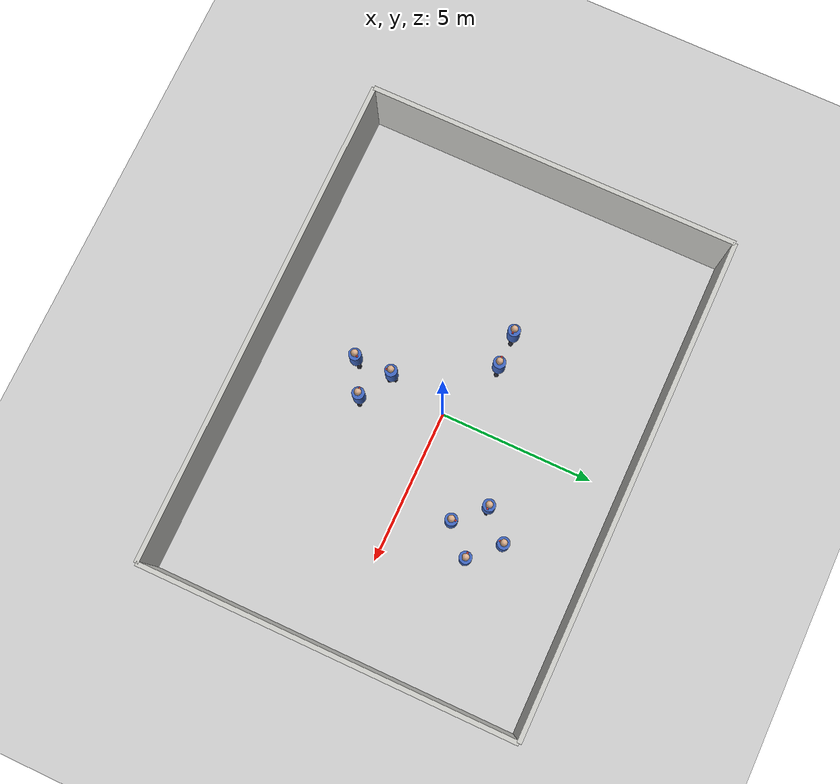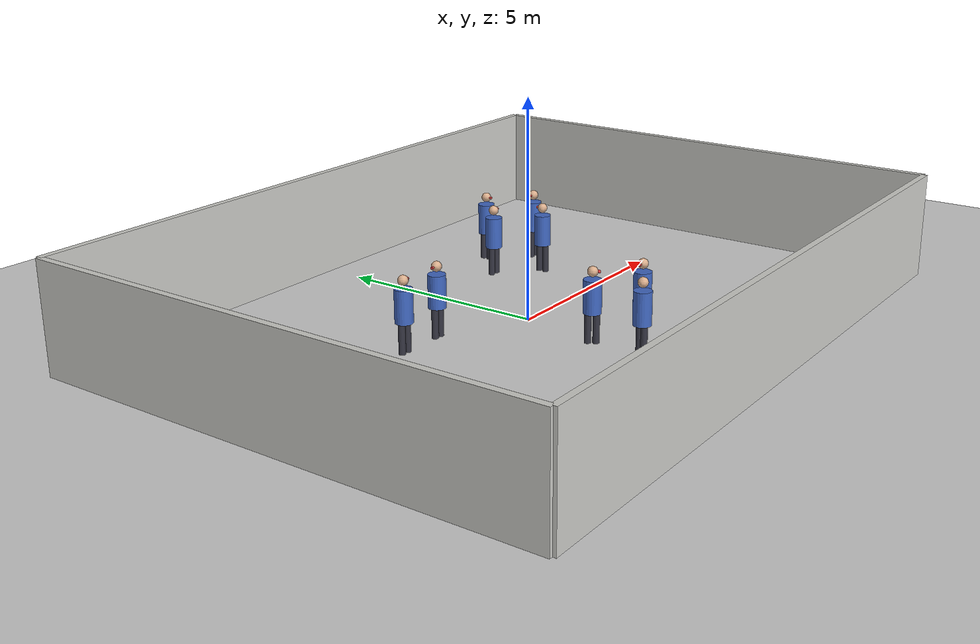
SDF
<?xml version="1.0" ?>
<sdf version="1.6">
  <world name="restaurant_humans">

    <include><uri>model://sun</uri></include>
    <include><uri>model://ground_plane</uri></include>

    <physics type="ode">
      <max_step_size>0.001</max_step_size>
      <real_time_factor>1.0</real_time_factor>
      <real_time_update_rate>1000</real_time_update_rate>
    </physics>

    <scene>
      <ambient>0.6 0.6 0.6 1</ambient>
      <shadows>false</shadows>
    </scene>

    <!-- Bounding walls: give the LiDAR something to localise against.
         Without walls, AMCL has no features to match and Nav2 localisation
         will drift badly. -->
    <model name="walls">
      <static>true</static>
      <link name="wall_link">
        <collision name="north"><pose>0 6 1.25 0 0 0</pose>
          <geometry><box><size>16 0.15 2.5</size></box></geometry></collision>
        <visual name="north_v"><pose>0 6 1.25 0 0 0</pose>
          <geometry><box><size>16 0.15 2.5</size></box></geometry>
          <material><ambient>0.8 0.8 0.78 1</ambient></material></visual>

        <collision name="south"><pose>0 -6 1.25 0 0 0</pose>
          <geometry><box><size>16 0.15 2.5</size></box></geometry></collision>
        <visual name="south_v"><pose>0 -6 1.25 0 0 0</pose>
          <geometry><box><size>16 0.15 2.5</size></box></geometry>
          <material><ambient>0.8 0.8 0.78 1</ambient></material></visual>

        <collision name="east"><pose>8 0 1.25 0 0 0</pose>
          <geometry><box><size>0.15 12 2.5</size></box></geometry></collision>
        <visual name="east_v"><pose>8 0 1.25 0 0 0</pose>
          <geometry><box><size>0.15 12 2.5</size></box></geometry>
          <material><ambient>0.8 0.8 0.78 1</ambient></material></visual>

        <collision name="west"><pose>-8 0 1.25 0 0 0</pose>
          <geometry><box><size>0.15 12 2.5</size></box></geometry></collision>
        <visual name="west_v"><pose>-8 0 1.25 0 0 0</pose>
          <geometry><box><size>0.15 12 2.5</size></box></geometry>
          <material><ambient>0.8 0.8 0.78 1</ambient></material></visual>
      </link>
    </model>

    <model name="person_g0_p0">
      <static>true</static>
      <pose>3.850 2.500 0 0 0 3.1416</pose>

      <link name="body">
        <!-- Torso -->
        <collision name="torso_collision">
          <pose>0 0 1.05 0 0 0</pose>
          <geometry><cylinder><radius>0.20</radius><length>0.75</length></cylinder></geometry>
        </collision>
        <visual name="torso_visual">
          <pose>0 0 1.05 0 0 0</pose>
          <geometry><cylinder><radius>0.20</radius><length>0.75</length></cylinder></geometry>
          <material><ambient>0.2 0.3 0.6 1</ambient><diffuse>0.25 0.4 0.75 1</diffuse></material>
        </visual>

        <!-- Head -->
        <collision name="head_collision">
          <pose>0 0 1.60 0 0 0</pose>
          <geometry><sphere><radius>0.115</radius></sphere></geometry>
        </collision>
        <visual name="head_visual">
          <pose>0 0 1.60 0 0 0</pose>
          <geometry><sphere><radius>0.115</radius></sphere></geometry>
          <material><ambient>0.7 0.55 0.45 1</ambient><diffuse>0.85 0.68 0.55 1</diffuse></material>
        </visual>

        <!-- Nose marker: makes facing direction visible in the GUI, which
             matters because F-formation is all about who faces whom. -->
        <visual name="facing_marker">
          <pose>0.13 0 1.60 0 1.5708 0</pose>
          <geometry><cylinder><radius>0.03</radius><length>0.06</length></cylinder></geometry>
          <material><ambient>0.8 0.2 0.2 1</ambient><diffuse>0.9 0.25 0.25 1</diffuse></material>
        </visual>

        <!-- Legs -->
        <collision name="legs_collision">
          <pose>0 0 0.35 0 0 0</pose>
          <geometry><cylinder><radius>0.17</radius><length>0.70</length></cylinder></geometry>
        </collision>
        <visual name="leg_left_visual">
          <pose>0.09 0 0.35 0 0 0</pose>
          <geometry><cylinder><radius>0.075</radius><length>0.70</length></cylinder></geometry>
          <material><ambient>0.15 0.15 0.2 1</ambient><diffuse>0.2 0.2 0.25 1</diffuse></material>
        </visual>
        <visual name="leg_right_visual">
          <pose>-0.09 0 0.35 0 0 0</pose>
          <geometry><cylinder><radius>0.075</radius><length>0.70</length></cylinder></geometry>
          <material><ambient>0.15 0.15 0.2 1</ambient><diffuse>0.2 0.2 0.25 1</diffuse></material>
        </visual>
      </link>
    </model>

    <model name="person_g0_p1">
      <static>true</static>
      <pose>3.000 3.350 0 0 0 4.7124</pose>

      <link name="body">
        <!-- Torso -->
        <collision name="torso_collision">
          <pose>0 0 1.05 0 0 0</pose>
          <geometry><cylinder><radius>0.20</radius><length>0.75</length></cylinder></geometry>
        </collision>
        <visual name="torso_visual">
          <pose>0 0 1.05 0 0 0</pose>
          <geometry><cylinder><radius>0.20</radius><length>0.75</length></cylinder></geometry>
          <material><ambient>0.2 0.3 0.6 1</ambient><diffuse>0.25 0.4 0.75 1</diffuse></material>
        </visual>

        <!-- Head -->
        <collision name="head_collision">
          <pose>0 0 1.60 0 0 0</pose>
          <geometry><sphere><radius>0.115</radius></sphere></geometry>
        </collision>
        <visual name="head_visual">
          <pose>0 0 1.60 0 0 0</pose>
          <geometry><sphere><radius>0.115</radius></sphere></geometry>
          <material><ambient>0.7 0.55 0.45 1</ambient><diffuse>0.85 0.68 0.55 1</diffuse></material>
        </visual>

        <!-- Nose marker: makes facing direction visible in the GUI, which
             matters because F-formation is all about who faces whom. -->
        <visual name="facing_marker">
          <pose>0.13 0 1.60 0 1.5708 0</pose>
          <geometry><cylinder><radius>0.03</radius><length>0.06</length></cylinder></geometry>
          <material><ambient>0.8 0.2 0.2 1</ambient><diffuse>0.9 0.25 0.25 1</diffuse></material>
        </visual>

        <!-- Legs -->
        <collision name="legs_collision">
          <pose>0 0 0.35 0 0 0</pose>
          <geometry><cylinder><radius>0.17</radius><length>0.70</length></cylinder></geometry>
        </collision>
        <visual name="leg_left_visual">
          <pose>0.09 0 0.35 0 0 0</pose>
          <geometry><cylinder><radius>0.075</radius><length>0.70</length></cylinder></geometry>
          <material><ambient>0.15 0.15 0.2 1</ambient><diffuse>0.2 0.2 0.25 1</diffuse></material>
        </visual>
        <visual name="leg_right_visual">
          <pose>-0.09 0 0.35 0 0 0</pose>
          <geometry><cylinder><radius>0.075</radius><length>0.70</length></cylinder></geometry>
          <material><ambient>0.15 0.15 0.2 1</ambient><diffuse>0.2 0.2 0.25 1</diffuse></material>
        </visual>
      </link>
    </model>

    <model name="person_g0_p2">
      <static>true</static>
      <pose>2.150 2.500 0 0 0 6.2832</pose>

      <link name="body">
        <!-- Torso -->
        <collision name="torso_collision">
          <pose>0 0 1.05 0 0 0</pose>
          <geometry><cylinder><radius>0.20</radius><length>0.75</length></cylinder></geometry>
        </collision>
        <visual name="torso_visual">
          <pose>0 0 1.05 0 0 0</pose>
          <geometry><cylinder><radius>0.20</radius><length>0.75</length></cylinder></geometry>
          <material><ambient>0.2 0.3 0.6 1</ambient><diffuse>0.25 0.4 0.75 1</diffuse></material>
        </visual>

        <!-- Head -->
        <collision name="head_collision">
          <pose>0 0 1.60 0 0 0</pose>
          <geometry><sphere><radius>0.115</radius></sphere></geometry>
        </collision>
        <visual name="head_visual">
          <pose>0 0 1.60 0 0 0</pose>
          <geometry><sphere><radius>0.115</radius></sphere></geometry>
          <material><ambient>0.7 0.55 0.45 1</ambient><diffuse>0.85 0.68 0.55 1</diffuse></material>
        </visual>

        <!-- Nose marker: makes facing direction visible in the GUI, which
             matters because F-formation is all about who faces whom. -->
        <visual name="facing_marker">
          <pose>0.13 0 1.60 0 1.5708 0</pose>
          <geometry><cylinder><radius>0.03</radius><length>0.06</length></cylinder></geometry>
          <material><ambient>0.8 0.2 0.2 1</ambient><diffuse>0.9 0.25 0.25 1</diffuse></material>
        </visual>

        <!-- Legs -->
        <collision name="legs_collision">
          <pose>0 0 0.35 0 0 0</pose>
          <geometry><cylinder><radius>0.17</radius><length>0.70</length></cylinder></geometry>
        </collision>
        <visual name="leg_left_visual">
          <pose>0.09 0 0.35 0 0 0</pose>
          <geometry><cylinder><radius>0.075</radius><length>0.70</length></cylinder></geometry>
          <material><ambient>0.15 0.15 0.2 1</ambient><diffuse>0.2 0.2 0.25 1</diffuse></material>
        </visual>
        <visual name="leg_right_visual">
          <pose>-0.09 0 0.35 0 0 0</pose>
          <geometry><cylinder><radius>0.075</radius><length>0.70</length></cylinder></geometry>
          <material><ambient>0.15 0.15 0.2 1</ambient><diffuse>0.2 0.2 0.25 1</diffuse></material>
        </visual>
      </link>
    </model>

    <model name="person_g0_p3">
      <static>true</static>
      <pose>3.000 1.650 0 0 0 7.8540</pose>

      <link name="body">
        <!-- Torso -->
        <collision name="torso_collision">
          <pose>0 0 1.05 0 0 0</pose>
          <geometry><cylinder><radius>0.20</radius><length>0.75</length></cylinder></geometry>
        </collision>
        <visual name="torso_visual">
          <pose>0 0 1.05 0 0 0</pose>
          <geometry><cylinder><radius>0.20</radius><length>0.75</length></cylinder></geometry>
          <material><ambient>0.2 0.3 0.6 1</ambient><diffuse>0.25 0.4 0.75 1</diffuse></material>
        </visual>

        <!-- Head -->
        <collision name="head_collision">
          <pose>0 0 1.60 0 0 0</pose>
          <geometry><sphere><radius>0.115</radius></sphere></geometry>
        </collision>
        <visual name="head_visual">
          <pose>0 0 1.60 0 0 0</pose>
          <geometry><sphere><radius>0.115</radius></sphere></geometry>
          <material><ambient>0.7 0.55 0.45 1</ambient><diffuse>0.85 0.68 0.55 1</diffuse></material>
        </visual>

        <!-- Nose marker: makes facing direction visible in the GUI, which
             matters because F-formation is all about who faces whom. -->
        <visual name="facing_marker">
          <pose>0.13 0 1.60 0 1.5708 0</pose>
          <geometry><cylinder><radius>0.03</radius><length>0.06</length></cylinder></geometry>
          <material><ambient>0.8 0.2 0.2 1</ambient><diffuse>0.9 0.25 0.25 1</diffuse></material>
        </visual>

        <!-- Legs -->
        <collision name="legs_collision">
          <pose>0 0 0.35 0 0 0</pose>
          <geometry><cylinder><radius>0.17</radius><length>0.70</length></cylinder></geometry>
        </collision>
        <visual name="leg_left_visual">
          <pose>0.09 0 0.35 0 0 0</pose>
          <geometry><cylinder><radius>0.075</radius><length>0.70</length></cylinder></geometry>
          <material><ambient>0.15 0.15 0.2 1</ambient><diffuse>0.2 0.2 0.25 1</diffuse></material>
        </visual>
        <visual name="leg_right_visual">
          <pose>-0.09 0 0.35 0 0 0</pose>
          <geometry><cylinder><radius>0.075</radius><length>0.70</length></cylinder></geometry>
          <material><ambient>0.15 0.15 0.2 1</ambient><diffuse>0.2 0.2 0.25 1</diffuse></material>
        </visual>
      </link>
    </model>

    <model name="person_g1_p0">
      <static>true</static>
      <pose>0.700 -2.500 0 0 0 3.1416</pose>

      <link name="body">
        <!-- Torso -->
        <collision name="torso_collision">
          <pose>0 0 1.05 0 0 0</pose>
          <geometry><cylinder><radius>0.20</radius><length>0.75</length></cylinder></geometry>
        </collision>
        <visual name="torso_visual">
          <pose>0 0 1.05 0 0 0</pose>
          <geometry><cylinder><radius>0.20</radius><length>0.75</length></cylinder></geometry>
          <material><ambient>0.2 0.3 0.6 1</ambient><diffuse>0.25 0.4 0.75 1</diffuse></material>
        </visual>

        <!-- Head -->
        <collision name="head_collision">
          <pose>0 0 1.60 0 0 0</pose>
          <geometry><sphere><radius>0.115</radius></sphere></geometry>
        </collision>
        <visual name="head_visual">
          <pose>0 0 1.60 0 0 0</pose>
          <geometry><sphere><radius>0.115</radius></sphere></geometry>
          <material><ambient>0.7 0.55 0.45 1</ambient><diffuse>0.85 0.68 0.55 1</diffuse></material>
        </visual>

        <!-- Nose marker: makes facing direction visible in the GUI, which
             matters because F-formation is all about who faces whom. -->
        <visual name="facing_marker">
          <pose>0.13 0 1.60 0 1.5708 0</pose>
          <geometry><cylinder><radius>0.03</radius><length>0.06</length></cylinder></geometry>
          <material><ambient>0.8 0.2 0.2 1</ambient><diffuse>0.9 0.25 0.25 1</diffuse></material>
        </visual>

        <!-- Legs -->
        <collision name="legs_collision">
          <pose>0 0 0.35 0 0 0</pose>
          <geometry><cylinder><radius>0.17</radius><length>0.70</length></cylinder></geometry>
        </collision>
        <visual name="leg_left_visual">
          <pose>0.09 0 0.35 0 0 0</pose>
          <geometry><cylinder><radius>0.075</radius><length>0.70</length></cylinder></geometry>
          <material><ambient>0.15 0.15 0.2 1</ambient><diffuse>0.2 0.2 0.25 1</diffuse></material>
        </visual>
        <visual name="leg_right_visual">
          <pose>-0.09 0 0.35 0 0 0</pose>
          <geometry><cylinder><radius>0.075</radius><length>0.70</length></cylinder></geometry>
          <material><ambient>0.15 0.15 0.2 1</ambient><diffuse>0.2 0.2 0.25 1</diffuse></material>
        </visual>
      </link>
    </model>

    <model name="person_g1_p1">
      <static>true</static>
      <pose>-0.350 -1.894 0 0 0 5.2360</pose>

      <link name="body">
        <!-- Torso -->
        <collision name="torso_collision">
          <pose>0 0 1.05 0 0 0</pose>
          <geometry><cylinder><radius>0.20</radius><length>0.75</length></cylinder></geometry>
        </collision>
        <visual name="torso_visual">
          <pose>0 0 1.05 0 0 0</pose>
          <geometry><cylinder><radius>0.20</radius><length>0.75</length></cylinder></geometry>
          <material><ambient>0.2 0.3 0.6 1</ambient><diffuse>0.25 0.4 0.75 1</diffuse></material>
        </visual>

        <!-- Head -->
        <collision name="head_collision">
          <pose>0 0 1.60 0 0 0</pose>
          <geometry><sphere><radius>0.115</radius></sphere></geometry>
        </collision>
        <visual name="head_visual">
          <pose>0 0 1.60 0 0 0</pose>
          <geometry><sphere><radius>0.115</radius></sphere></geometry>
          <material><ambient>0.7 0.55 0.45 1</ambient><diffuse>0.85 0.68 0.55 1</diffuse></material>
        </visual>

        <!-- Nose marker: makes facing direction visible in the GUI, which
             matters because F-formation is all about who faces whom. -->
        <visual name="facing_marker">
          <pose>0.13 0 1.60 0 1.5708 0</pose>
          <geometry><cylinder><radius>0.03</radius><length>0.06</length></cylinder></geometry>
          <material><ambient>0.8 0.2 0.2 1</ambient><diffuse>0.9 0.25 0.25 1</diffuse></material>
        </visual>

        <!-- Legs -->
        <collision name="legs_collision">
          <pose>0 0 0.35 0 0 0</pose>
          <geometry><cylinder><radius>0.17</radius><length>0.70</length></cylinder></geometry>
        </collision>
        <visual name="leg_left_visual">
          <pose>0.09 0 0.35 0 0 0</pose>
          <geometry><cylinder><radius>0.075</radius><length>0.70</length></cylinder></geometry>
          <material><ambient>0.15 0.15 0.2 1</ambient><diffuse>0.2 0.2 0.25 1</diffuse></material>
        </visual>
        <visual name="leg_right_visual">
          <pose>-0.09 0 0.35 0 0 0</pose>
          <geometry><cylinder><radius>0.075</radius><length>0.70</length></cylinder></geometry>
          <material><ambient>0.15 0.15 0.2 1</ambient><diffuse>0.2 0.2 0.25 1</diffuse></material>
        </visual>
      </link>
    </model>

    <model name="person_g1_p2">
      <static>true</static>
      <pose>-0.350 -3.106 0 0 0 7.3304</pose>

      <link name="body">
        <!-- Torso -->
        <collision name="torso_collision">
          <pose>0 0 1.05 0 0 0</pose>
          <geometry><cylinder><radius>0.20</radius><length>0.75</length></cylinder></geometry>
        </collision>
        <visual name="torso_visual">
          <pose>0 0 1.05 0 0 0</pose>
          <geometry><cylinder><radius>0.20</radius><length>0.75</length></cylinder></geometry>
          <material><ambient>0.2 0.3 0.6 1</ambient><diffuse>0.25 0.4 0.75 1</diffuse></material>
        </visual>

        <!-- Head -->
        <collision name="head_collision">
          <pose>0 0 1.60 0 0 0</pose>
          <geometry><sphere><radius>0.115</radius></sphere></geometry>
        </collision>
        <visual name="head_visual">
          <pose>0 0 1.60 0 0 0</pose>
          <geometry><sphere><radius>0.115</radius></sphere></geometry>
          <material><ambient>0.7 0.55 0.45 1</ambient><diffuse>0.85 0.68 0.55 1</diffuse></material>
        </visual>

        <!-- Nose marker: makes facing direction visible in the GUI, which
             matters because F-formation is all about who faces whom. -->
        <visual name="facing_marker">
          <pose>0.13 0 1.60 0 1.5708 0</pose>
          <geometry><cylinder><radius>0.03</radius><length>0.06</length></cylinder></geometry>
          <material><ambient>0.8 0.2 0.2 1</ambient><diffuse>0.9 0.25 0.25 1</diffuse></material>
        </visual>

        <!-- Legs -->
        <collision name="legs_collision">
          <pose>0 0 0.35 0 0 0</pose>
          <geometry><cylinder><radius>0.17</radius><length>0.70</length></cylinder></geometry>
        </collision>
        <visual name="leg_left_visual">
          <pose>0.09 0 0.35 0 0 0</pose>
          <geometry><cylinder><radius>0.075</radius><length>0.70</length></cylinder></geometry>
          <material><ambient>0.15 0.15 0.2 1</ambient><diffuse>0.2 0.2 0.25 1</diffuse></material>
        </visual>
        <visual name="leg_right_visual">
          <pose>-0.09 0 0.35 0 0 0</pose>
          <geometry><cylinder><radius>0.075</radius><length>0.70</length></cylinder></geometry>
          <material><ambient>0.15 0.15 0.2 1</ambient><diffuse>0.2 0.2 0.25 1</diffuse></material>
        </visual>
      </link>
    </model>

    <model name="person_g2_p0">
      <static>true</static>
      <pose>-1.950 1.000 0 0 0 3.1416</pose>

      <link name="body">
        <!-- Torso -->
        <collision name="torso_collision">
          <pose>0 0 1.05 0 0 0</pose>
          <geometry><cylinder><radius>0.20</radius><length>0.75</length></cylinder></geometry>
        </collision>
        <visual name="torso_visual">
          <pose>0 0 1.05 0 0 0</pose>
          <geometry><cylinder><radius>0.20</radius><length>0.75</length></cylinder></geometry>
          <material><ambient>0.2 0.3 0.6 1</ambient><diffuse>0.25 0.4 0.75 1</diffuse></material>
        </visual>

        <!-- Head -->
        <collision name="head_collision">
          <pose>0 0 1.60 0 0 0</pose>
          <geometry><sphere><radius>0.115</radius></sphere></geometry>
        </collision>
        <visual name="head_visual">
          <pose>0 0 1.60 0 0 0</pose>
          <geometry><sphere><radius>0.115</radius></sphere></geometry>
          <material><ambient>0.7 0.55 0.45 1</ambient><diffuse>0.85 0.68 0.55 1</diffuse></material>
        </visual>

        <!-- Nose marker: makes facing direction visible in the GUI, which
             matters because F-formation is all about who faces whom. -->
        <visual name="facing_marker">
          <pose>0.13 0 1.60 0 1.5708 0</pose>
          <geometry><cylinder><radius>0.03</radius><length>0.06</length></cylinder></geometry>
          <material><ambient>0.8 0.2 0.2 1</ambient><diffuse>0.9 0.25 0.25 1</diffuse></material>
        </visual>

        <!-- Legs -->
        <collision name="legs_collision">
          <pose>0 0 0.35 0 0 0</pose>
          <geometry><cylinder><radius>0.17</radius><length>0.70</length></cylinder></geometry>
        </collision>
        <visual name="leg_left_visual">
          <pose>0.09 0 0.35 0 0 0</pose>
          <geometry><cylinder><radius>0.075</radius><length>0.70</length></cylinder></geometry>
          <material><ambient>0.15 0.15 0.2 1</ambient><diffuse>0.2 0.2 0.25 1</diffuse></material>
        </visual>
        <visual name="leg_right_visual">
          <pose>-0.09 0 0.35 0 0 0</pose>
          <geometry><cylinder><radius>0.075</radius><length>0.70</length></cylinder></geometry>
          <material><ambient>0.15 0.15 0.2 1</ambient><diffuse>0.2 0.2 0.25 1</diffuse></material>
        </visual>
      </link>
    </model>

    <model name="person_g2_p1">
      <static>true</static>
      <pose>-3.050 1.000 0 0 0 6.2832</pose>

      <link name="body">
        <!-- Torso -->
        <collision name="torso_collision">
          <pose>0 0 1.05 0 0 0</pose>
          <geometry><cylinder><radius>0.20</radius><length>0.75</length></cylinder></geometry>
        </collision>
        <visual name="torso_visual">
          <pose>0 0 1.05 0 0 0</pose>
          <geometry><cylinder><radius>0.20</radius><length>0.75</length></cylinder></geometry>
          <material><ambient>0.2 0.3 0.6 1</ambient><diffuse>0.25 0.4 0.75 1</diffuse></material>
        </visual>

        <!-- Head -->
        <collision name="head_collision">
          <pose>0 0 1.60 0 0 0</pose>
          <geometry><sphere><radius>0.115</radius></sphere></geometry>
        </collision>
        <visual name="head_visual">
          <pose>0 0 1.60 0 0 0</pose>
          <geometry><sphere><radius>0.115</radius></sphere></geometry>
          <material><ambient>0.7 0.55 0.45 1</ambient><diffuse>0.85 0.68 0.55 1</diffuse></material>
        </visual>

        <!-- Nose marker: makes facing direction visible in the GUI, which
             matters because F-formation is all about who faces whom. -->
        <visual name="facing_marker">
          <pose>0.13 0 1.60 0 1.5708 0</pose>
          <geometry><cylinder><radius>0.03</radius><length>0.06</length></cylinder></geometry>
          <material><ambient>0.8 0.2 0.2 1</ambient><diffuse>0.9 0.25 0.25 1</diffuse></material>
        </visual>

        <!-- Legs -->
        <collision name="legs_collision">
          <pose>0 0 0.35 0 0 0</pose>
          <geometry><cylinder><radius>0.17</radius><length>0.70</length></cylinder></geometry>
        </collision>
        <visual name="leg_left_visual">
          <pose>0.09 0 0.35 0 0 0</pose>
          <geometry><cylinder><radius>0.075</radius><length>0.70</length></cylinder></geometry>
          <material><ambient>0.15 0.15 0.2 1</ambient><diffuse>0.2 0.2 0.25 1</diffuse></material>
        </visual>
        <visual name="leg_right_visual">
          <pose>-0.09 0 0.35 0 0 0</pose>
          <geometry><cylinder><radius>0.075</radius><length>0.70</length></cylinder></geometry>
          <material><ambient>0.15 0.15 0.2 1</ambient><diffuse>0.2 0.2 0.25 1</diffuse></material>
        </visual>
      </link>
    </model>

  </world>
</sdf>
